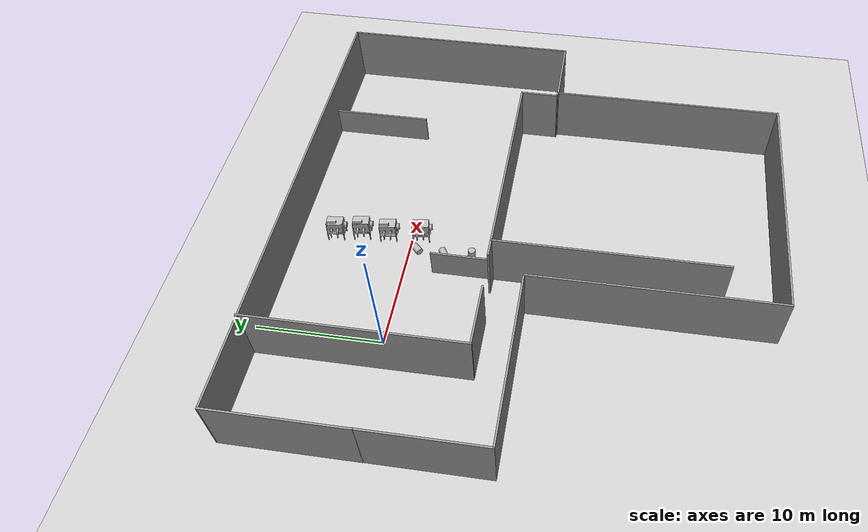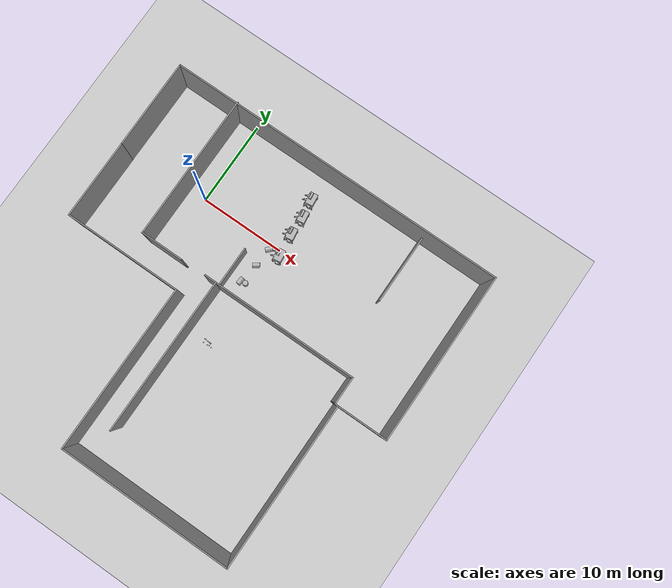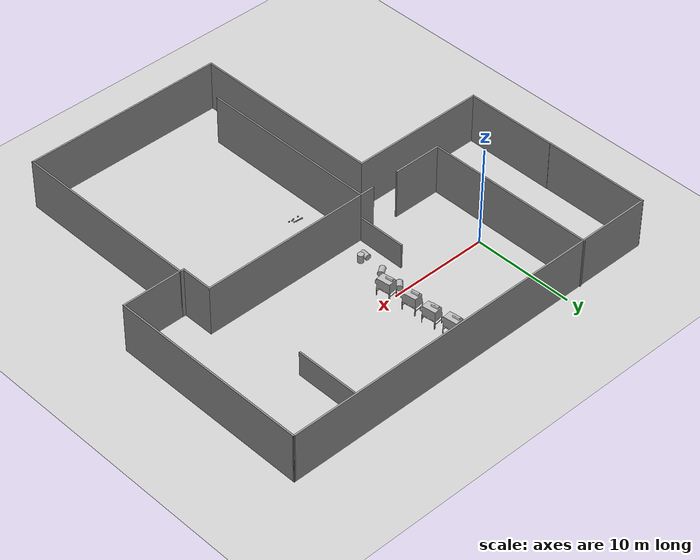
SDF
<sdf version="1.7">
 <world name="default">
  <model name="ground_plane">
   <static>1</static>
   <link name="link">
    <collision name="collision">
     <geometry><plane><normal>0 0 1</normal><size>100 100</size></plane></geometry>
     <surface><friction><ode><mu>100</mu><mu2>50</mu2></ode></friction></surface>
    </collision>
    <visual name="visual">
     <cast_shadows>0</cast_shadows>
     <geometry><plane><normal>0 0 1</normal><size>100 100</size></plane></geometry>
     <material>
      <script><uri>file://media/materials/scripts/gazebo.material</uri><name>Gazebo/Grey</name></script>
     </material>
    </visual>
   </link>
  </model>
  <model name="large_room_demo">
   <pose>10.4026 -9.94141 0 0 -0 0</pose>
   <link name="Wall_1">
    <collision name="Wall_1_Collision">
     <geometry><box><size>9.25 0.15 5</size></box></geometry>
     <pose>0 0 2.5 0 -0 0</pose>
    </collision>
    <visual name="Wall_1_Visual">
     <pose>0 0 2.5 0 -0 0</pose>
     <geometry><box><size>9.25 0.15 5</size></box></geometry>
     <material>
      <script><uri>file://media/materials/scripts/gazebo.material</uri><name>Gazebo/Grey</name></script>
      <ambient>1 1 1 1</ambient>
     </material>
     <meta><layer>0</layer></meta>
    </visual>
    <pose>-19.766 4.391 0 0 -0 -1.5708</pose>
   </link>
   <link name="Wall_11">
    <collision name="Wall_11_Collision">
     <geometry><box><size>17 0.15 5</size></box></geometry>
     <pose>0 0 2.5 0 -0 0</pose>
    </collision>
    <visual name="Wall_11_Visual">
     <pose>0 0 2.5 0 -0 0</pose>
     <geometry><box><size>17 0.15 5</size></box></geometry>
     <material>
      <script><uri>file://media/materials/scripts/gazebo.material</uri><name>Gazebo/Grey</name></script>
      <ambient>1 1 1 1</ambient>
     </material>
     <meta><layer>0</layer></meta>
    </visual>
    <pose>-12.466 11.084 0 0 -0 -1.5708</pose>
   </link>
   <link name="Wall_12">
    <collision name="Wall_12_Collision">
     <geometry><box><size>5 0.15 5</size></box></geometry>
     <pose>0 0 2.5 0 -0 0</pose>
    </collision>
    <visual name="Wall_12_Visual">
     <pose>0 0 2.5 0 -0 0</pose>
     <geometry><box><size>5 0.15 5</size></box></geometry>
     <material>
      <script><uri>file://media/materials/scripts/gazebo.material</uri><name>Gazebo/Grey</name></script>
      <ambient>1 1 1 1</ambient>
     </material>
     <meta><layer>0</layer></meta>
    </visual>
    <pose>-10.041 2.659 0 0 -0 0</pose>
   </link>
   <link name="Wall_15">
    <collision name="Wall_15_Collision">
     <geometry><box><size>1.5 0.15 5</size></box></geometry>
     <pose>0 0 2.5 0 -0 0</pose>
    </collision>
    <visual name="Wall_15_Visual">
     <pose>0 0 2.5 0 -0 0</pose>
     <geometry><box><size>1.5 0.15 5</size></box></geometry>
     <material>
      <script><uri>file://media/materials/scripts/gazebo.material</uri><name>Gazebo/Grey</name></script>
      <ambient>1 1 1 1</ambient>
     </material>
     <meta><layer>0</layer></meta>
    </visual>
    <pose>-3.97 2.751 0 0 -0 0</pose>
   </link>
   <link name="Wall_16">
    <collision name="Wall_16_Collision">
     <geometry><box><size>18.2497 0.15 5</size></box></geometry>
     <pose>0 0 2.5 0 -0 0</pose>
    </collision>
    <visual name="Wall_16_Visual">
     <pose>0 0 2.5 0 -0 0</pose>
     <geometry><box><size>18.2497 0.15 5</size></box></geometry>
     <material>
      <script><uri>file://media/materials/scripts/gazebo.material</uri><name>Gazebo/Grey</name></script>
      <ambient>1 1 1 1</ambient>
     </material>
     <meta><layer>0</layer></meta>
    </visual>
    <pose>-3.295 -6.299 0 0 -0 -1.5708</pose>
   </link>
   <link name="Wall_18">
    <collision name="Wall_18_Collision">
     <geometry><box><size>17 0.15 5</size></box></geometry>
     <pose>0 0 2.5 0 -0 0</pose>
    </collision>
    <visual name="Wall_18_Visual">
     <pose>0 0 2.5 0 -0 0</pose>
     <geometry><box><size>17 0.15 5</size></box></geometry>
     <material>
      <script><uri>file://media/materials/scripts/gazebo.material</uri><name>Gazebo/Grey</name></script>
      <ambient>1 1 1 1</ambient>
     </material>
     <meta><layer>0</layer></meta>
    </visual>
    <pose>5.13 2.751 0 0 -0 0</pose>
   </link>
   <link name="Wall_19">
    <collision name="Wall_19_Collision">
     <geometry><box><size>3.25 0.15 5</size></box></geometry>
     <pose>0 0 2.5 0 -0 0</pose>
    </collision>
    <visual name="Wall_19_Visual">
     <pose>0 0 2.5 0 -0 0</pose>
     <geometry><box><size>3.25 0.15 5</size></box></geometry>
     <material>
      <script><uri>file://media/materials/scripts/gazebo.material</uri><name>Gazebo/Grey</name></script>
      <ambient>1 1 1 1</ambient>
     </material>
     <meta><layer>0</layer></meta>
    </visual>
    <pose>13.555 1.201 0 0 -0 -1.5708</pose>
   </link>
   <link name="Wall_2">
    <collision name="Wall_2_Collision">
     <geometry><box><size>13.75 0.15 5</size></box></geometry>
     <pose>0 0 2.5 0 -0 0</pose>
    </collision>
    <visual name="Wall_2_Visual">
     <pose>0 0 2.5 0 -0 0</pose>
     <geometry><box><size>13.75 0.15 5</size></box></geometry>
     <material>
      <script><uri>file://media/materials/scripts/gazebo.material</uri><name>Gazebo/Grey</name></script>
      <ambient>1 1 1 1</ambient>
     </material>
     <meta><layer>0</layer></meta>
    </visual>
    <pose>-12.966 -0.159 0 0 -0 0</pose>
   </link>
   <link name="Wall_20">
    <collision name="Wall_20_Collision">
     <geometry><box><size>0.533873 0.15 5</size></box></geometry>
     <pose>0 0 2.5 0 -0 0</pose>
    </collision>
    <visual name="Wall_20_Visual">
     <pose>0 0 2.5 0 -0 0</pose>
     <geometry><box><size>0.533873 0.15 5</size></box></geometry>
     <material>
      <script><uri>file://media/materials/scripts/gazebo.material</uri><name>Gazebo/Grey</name></script>
      <ambient>1 1 1 1</ambient>
     </material>
     <meta><layer>0</layer></meta>
    </visual>
    <pose>13.7445 -0.379 0 0 -0 -0.157008</pose>
   </link>
   <link name="Wall_22">
    <collision name="Wall_22_Collision">
     <geometry><box><size>8.25 0.15 2.5</size></box></geometry>
     <pose>0 0 1.25 0 -0 0</pose>
    </collision>
    <visual name="Wall_22_Visual">
     <pose>0 0 1.25 0 -0 0</pose>
     <geometry><box><size>8.25 0.15 2.5</size></box></geometry>
     <material>
      <script><uri>file://media/materials/scripts/gazebo.material</uri><name>Gazebo/Grey</name></script>
      <ambient>1 1 1 1</ambient>
     </material>
     <meta><layer>0</layer></meta>
    </visual>
    <pose>11.5445 15.3019 0 0 -0 -1.5708</pose>
   </link>
   <link name="Wall_24">
    <collision name="Wall_24_Collision">
     <geometry><box><size>5 0.15 2.5</size></box></geometry>
     <pose>0 0 1.25 0 -0 0</pose>
    </collision>
    <visual name="Wall_24_Visual">
     <pose>0 0 1.25 0 -0 0</pose>
     <geometry><box><size>5 0.15 2.5</size></box></geometry>
     <material>
      <script><uri>file://media/materials/scripts/gazebo.material</uri><name>Gazebo/Grey</name></script>
      <ambient>1 1 1 1</ambient>
     </material>
     <meta><layer>0</layer></meta>
    </visual>
    <pose>-3.295 5.176 0 0 -0 1.5708</pose>
   </link>
   <link name="Wall_3">
    <collision name="Wall_3_Collision">
     <geometry><box><size>19.5 0.15 5</size></box></geometry>
     <pose>0 0 2.5 0 -0 0</pose>
    </collision>
    <visual name="Wall_3_Visual">
     <pose>0 0 2.5 0 -0 0</pose>
     <geometry><box><size>19.5 0.15 5</size></box></geometry>
     <material>
      <script><uri>file://media/materials/scripts/gazebo.material</uri><name>Gazebo/Grey</name></script>
      <ambient>1 1 1 1</ambient>
     </material>
     <meta><layer>0</layer></meta>
    </visual>
    <pose>-6.166 -9.834 0 0 -0 -1.5708</pose>
   </link>
   <link name="Wall_4">
    <collision name="Wall_4_Collision">
     <geometry><box><size>20.25 0.15 5</size></box></geometry>
     <pose>0 0 2.5 0 -0 0</pose>
    </collision>
    <visual name="Wall_4_Visual">
     <pose>0 0 2.5 0 -0 0</pose>
     <geometry><box><size>20.25 0.15 5</size></box></geometry>
     <material>
      <script><uri>file://media/materials/scripts/gazebo.material</uri><name>Gazebo/Grey</name></script>
      <ambient>1 1 1 1</ambient>
     </material>
     <meta><layer>0</layer></meta>
    </visual>
    <pose>3.884 -19.509 0 0 -0 0</pose>
   </link>
   <link name="Wall_5">
    <collision name="Wall_5_Collision">
     <geometry><box><size>19.25 0.15 5</size></box></geometry>
     <pose>0 0 2.5 0 -0 0</pose>
    </collision>
    <visual name="Wall_5_Visual">
     <pose>0 0 2.5 0 -0 0</pose>
     <geometry><box><size>19.25 0.15 5</size></box></geometry>
     <material>
      <script><uri>file://media/materials/scripts/gazebo.material</uri><name>Gazebo/Grey</name></script>
      <ambient>1 1 1 1</ambient>
     </material>
     <meta><layer>0</layer></meta>
    </visual>
    <pose>13.934 -9.959 0 0 -0 1.5708</pose>
   </link>
   <link name="Wall_6">
    <collision name="Wall_6_Collision">
     <geometry><box><size>6 0.15 5</size></box></geometry>
     <pose>0 0 2.5 0 -0 0</pose>
    </collision>
    <visual name="Wall_6_Visual">
     <pose>0 0 2.5 0 -0 0</pose>
     <geometry><box><size>6 0.15 5</size></box></geometry>
     <material>
      <script><uri>file://media/materials/scripts/gazebo.material</uri><name>Gazebo/Grey</name></script>
      <ambient>1 1 1 1</ambient>
     </material>
     <meta><layer>0</layer></meta>
    </visual>
    <pose>16.859 -0.409 0 0 -0 0</pose>
   </link>
   <link name="Wall_7">
    <collision name="Wall_7_Collision">
     <geometry><box><size>20 0.15 5</size></box></geometry>
     <pose>0 0 2.5 0 -0 0</pose>
    </collision>
    <visual name="Wall_7_Visual">
     <pose>0 0 2.5 0 -0 0</pose>
     <geometry><box><size>20 0.15 5</size></box></geometry>
     <material>
      <script><uri>file://media/materials/scripts/gazebo.material</uri><name>Gazebo/Grey</name></script>
      <ambient>1 1 1 1</ambient>
     </material>
     <meta><layer>0</layer></meta>
    </visual>
    <pose>19.784 9.516 0 0 -0 1.5708</pose>
   </link>
   <link name="Wall_8">
    <collision name="Wall_8_Collision">
     <geometry><box><size>39.718 0.15 5</size></box></geometry>
     <pose>0 0 2.5 0 -0 0</pose>
    </collision>
    <visual name="Wall_8_Visual">
     <pose>0 0 2.5 0 -0 0</pose>
     <geometry><box><size>39.718 0.15 5</size></box></geometry>
     <material>
      <script><uri>file://media/materials/scripts/gazebo.material</uri><name>Gazebo/Grey</name></script>
      <ambient>1 1 1 1</ambient>
     </material>
     <meta><layer>0</layer></meta>
    </visual>
    <pose>0 19.4235 0 0 -0 -3.14071</pose>
   </link>
   <link name="Wall_9">
    <collision name="Wall_9_Collision">
     <geometry><box><size>10.5 0.15 5</size></box></geometry>
     <pose>0 0 2.5 0 -0 0</pose>
    </collision>
    <visual name="Wall_9_Visual">
     <pose>0 0 2.5 0 -0 0</pose>
     <geometry><box><size>10.5 0.15 5</size></box></geometry>
     <material>
      <script><uri>file://media/materials/scripts/gazebo.material</uri><name>Gazebo/Grey</name></script>
      <ambient>1 1 1 1</ambient>
     </material>
     <meta><layer>0</layer></meta>
    </visual>
    <pose>-19.784 14.231 0 0 -0 -1.5708</pose>
   </link>
   <static>1</static>
  </model>
  <model name="toxic_barrel_clone_clone_0">
   <static>0</static>
   <link name="link">
    <visual name="visual">
     <geometry><mesh><uri>model://toxic_barrel/meshes/barrel_red.obj</uri></mesh></geometry>
    </visual>
    <collision name="collision">
     <geometry><mesh><uri>model://toxic_barrel/meshes/barrel_red.obj</uri></mesh></geometry>
    </collision>
    <inertial>
     <inertia><ixx>1</ixx><ixy>0</ixy><ixz>0</ixz><iyy>1</iyy><iyz>0</iyz><izz>1</izz></inertia>
     <mass>1</mass>
    </inertial>
   </link>
   <pose>8.98441 -0.609743 0.306198 -3.14159 -0.981738 2.37214</pose>
  </model>
  <model name="toxic_barrel_clone_clone_3">
   <static>0</static>
   <link name="link">
    <visual name="visual">
     <geometry><mesh><uri>model://toxic_barrel/meshes/barrel_red.obj</uri></mesh></geometry>
    </visual>
    <collision name="collision">
     <geometry><mesh><uri>model://toxic_barrel/meshes/barrel_red.obj</uri></mesh></geometry>
    </collision>
    <inertial>
     <inertia><ixx>1</ixx><ixy>0</ixy><ixz>0</ixz><iyy>1</iyy><iyz>0</iyz><izz>1</izz></inertia>
     <mass>1</mass>
    </inertial>
   </link>
   <pose>8.83956 -2.86271 0.306203 -8e-06 -0.981729 -0.994421</pose>
  </model>
  <model name="toxic_barrel_clone_clone_3_clone_clone_7_clone_0">
   <static>0</static>
   <link name="link">
    <visual name="visual">
     <geometry><mesh><uri>model://toxic_barrel/meshes/barrel_red.obj</uri></mesh></geometry>
    </visual>
    <collision name="collision">
     <geometry><mesh><uri>model://toxic_barrel/meshes/barrel_red.obj</uri></mesh></geometry>
    </collision>
    <inertial>
     <inertia><ixx>1</ixx><ixy>0</ixy><ixz>0</ixz><iyy>1</iyy><iyz>0</iyz><izz>1</izz></inertia>
     <mass>1</mass>
    </inertial>
   </link>
   <pose>9.05496 -5.16635 0.426402 -1.56826 0.003571 1.79292</pose>
  </model>
  <model name="toxic_barrel_clone_clone_3_clone_clone_7_clone_3_clone">
   <static>0</static>
   <link name="link">
    <visual name="visual">
     <geometry><mesh><uri>model://toxic_barrel/meshes/barrel_red.obj</uri></mesh></geometry>
    </visual>
    <collision name="collision">
     <geometry><mesh><uri>model://toxic_barrel/meshes/barrel_red.obj</uri></mesh></geometry>
    </collision>
    <inertial>
     <inertia><ixx>1</ixx><ixy>0</ixy><ixz>0</ixz><iyy>1</iyy><iyz>0</iyz><izz>1</izz></inertia>
     <mass>1</mass>
    </inertial>
   </link>
   <pose>8.44629 -5.25693 0.306206 -0 0.981737 3.05699</pose>
  </model>
  <model name="glovebox_clone_1_clone_3_clone">
   <static>0</static>
   <link name="link">
    <visual name="visual">
     <geometry><mesh><uri>model://glovebox/meshes/glovebox.obj</uri></mesh></geometry>
    </visual>
    <collision name="collision">
     <geometry><mesh><uri>model://glovebox/meshes/glovebox.obj</uri></mesh></geometry>
    </collision>
    <inertial>
     <inertia><ixx>1</ixx><ixy>0</ixy><ixz>0</ixz><iyy>1</iyy><iyz>0</iyz><izz>1</izz></inertia>
     <mass>1</mass>
    </inertial>
   </link>
   <pose>10.0468 4.22875 -0.000824 1.56974 -5e-06 -1.43636</pose>
  </model>
  <model name="glovebox_clone_1_clone_3_clone_0">
   <static>0</static>
   <link name="link">
    <visual name="visual">
     <geometry><mesh><uri>model://glovebox/meshes/glovebox.obj</uri></mesh></geometry>
    </visual>
    <collision name="collision">
     <geometry><mesh><uri>model://glovebox/meshes/glovebox.obj</uri></mesh></geometry>
    </collision>
    <inertial>
     <inertia><ixx>1</ixx><ixy>0</ixy><ixz>0</ixz><iyy>1</iyy><iyz>0</iyz><izz>1</izz></inertia>
     <mass>1</mass>
    </inertial>
   </link>
   <pose>10.095 1.99987 -0.000791 1.57079 -0.000768 -1.43694</pose>
  </model>
  <model name="glovebox_clone_1_clone_3_clone_1">
   <static>0</static>
   <link name="link">
    <visual name="visual">
     <geometry><mesh><uri>model://glovebox/meshes/glovebox.obj</uri></mesh></geometry>
    </visual>
    <collision name="collision">
     <geometry><mesh><uri>model://glovebox/meshes/glovebox.obj</uri></mesh></geometry>
    </collision>
    <inertial>
     <inertia><ixx>1</ixx><ixy>0</ixy><ixz>0</ixz><iyy>1</iyy><iyz>0</iyz><izz>1</izz></inertia>
     <mass>1</mass>
    </inertial>
   </link>
   <pose>10.3953 -0.695399 -0.000791 1.57079 -0.000768 -1.43697</pose>
  </model>
  <model name="glovebox_clone_1_clone_3">
   <static>0</static>
   <link name="link">
    <visual name="visual">
     <geometry><mesh><uri>model://glovebox/meshes/glovebox.obj</uri></mesh></geometry>
    </visual>
    <collision name="collision">
     <geometry><mesh><uri>model://glovebox/meshes/glovebox.obj</uri></mesh></geometry>
    </collision>
    <inertial>
     <inertia><ixx>1</ixx><ixy>0</ixy><ixz>0</ixz><iyy>1</iyy><iyz>0</iyz><izz>1</izz></inertia>
     <mass>1</mass>
    </inertial>
   </link>
   <pose>9.71778 6.34041 -0.001026 1.57256 -7.1e-05 -1.46807</pose>
  </model>
  <model name="depth_camera">
   <link name="link">
    <pose>0 0 0.05 0 -0 0</pose>
    <inertial>
     <mass>0.1</mass>
     <inertia>
      <ixx>0.000166667</ixx>
      <iyy>0.000166667</iyy>
      <izz>0.000166667</izz>
      <ixy>0</ixy>
      <ixz>0</ixz>
      <iyz>0</iyz>
     </inertia>
    </inertial>
    <collision name="collision"><geometry><box><size>0.1 0.1 0.1</size></box></geometry></collision>
    <visual name="visual"><geometry><box><size>0.1 0.1 0.1</size></box></geometry></visual>
    <sensor name="camera" type="depth">
     <camera>
      <horizontal_fov>1.047</horizontal_fov>
      <image><width>320</width><height>240</height></image>
      <clip><near>0.1</near><far>100</far></clip>
     </camera>
     <always_on>1</always_on>
     <update_rate>30</update_rate>
     <visualize>1</visualize>
    </sensor>
   </link>
   <pose>8.89972 -12.5883 0.0105 0 -0 -1.7e-05</pose>
  </model>
  <model name="depth_camera_clone">
   <link name="link">
    <pose>0 0 0.05 0 -0 0</pose>
    <inertial>
     <mass>0.1</mass>
     <inertia>
      <ixx>0.000166667</ixx>
      <iyy>0.000166667</iyy>
      <izz>0.000166667</izz>
      <ixy>0</ixy>
      <ixz>0</ixz>
      <iyz>0</iyz>
     </inertia>
    </inertial>
    <collision name="collision"><geometry><box><size>0.1 0.1 0.1</size></box></geometry></collision>
    <visual name="visual"><geometry><box><size>0.1 0.1 0.1</size></box></geometry></visual>
    <sensor name="camera" type="depth">
     <camera>
      <horizontal_fov>1.047</horizontal_fov>
      <image><width>320</width><height>240</height></image>
      <clip><near>0.1</near><far>100</far></clip>
     </camera>
     <always_on>1</always_on>
     <update_rate>30</update_rate>
     <visualize>1</visualize>
    </sensor>
   </link>
   <pose>9.0896 -12.5986 0.010495 -3.1e-05 6.3e-05 5.2e-05</pose>
  </model>
  <model name="depth_camera_clone_0">
   <link name="link">
    <pose>0 0 0.05 0 -0 0</pose>
    <inertial>
     <mass>0.1</mass>
     <inertia>
      <ixx>0.000166667</ixx>
      <iyy>0.000166667</iyy>
      <izz>0.000166667</izz>
      <ixy>0</ixy>
      <ixz>0</ixz>
      <iyz>0</iyz>
     </inertia>
    </inertial>
    <collision name="collision"><geometry><box><size>0.1 0.1 0.1</size></box></geometry></collision>
    <visual name="visual"><geometry><box><size>0.1 0.1 0.1</size></box></geometry></visual>
    <sensor name="camera" type="depth">
     <camera>
      <horizontal_fov>1.047</horizontal_fov>
      <image><width>320</width><height>240</height></image>
      <clip><near>0.1</near><far>100</far></clip>
     </camera>
     <always_on>1</always_on>
     <update_rate>30</update_rate>
     <visualize>1</visualize>
    </sensor>
   </link>
   <pose>9.29288 -12.6278 0.010495 -3.1e-05 6.3e-05 5.2e-05</pose>
  </model>
  <model name="depth_camera_clone_1">
   <link name="link">
    <pose>0 0 0.05 0 -0 0</pose>
    <inertial>
     <mass>0.1</mass>
     <inertia>
      <ixx>0.000166667</ixx>
      <iyy>0.000166667</iyy>
      <izz>0.000166667</izz>
      <ixy>0</ixy>
      <ixz>0</ixz>
      <iyz>0</iyz>
     </inertia>
    </inertial>
    <collision name="collision"><geometry><box><size>0.1 0.1 0.1</size></box></geometry></collision>
    <visual name="visual"><geometry><box><size>0.1 0.1 0.1</size></box></geometry></visual>
    <sensor name="camera" type="depth">
     <camera>
      <horizontal_fov>1.047</horizontal_fov>
      <image><width>320</width><height>240</height></image>
      <clip><near>0.1</near><far>100</far></clip>
     </camera>
     <always_on>1</always_on>
     <update_rate>30</update_rate>
     <visualize>1</visualize>
    </sensor>
   </link>
   <pose>9.506 -12.6372 0.010495 -3.1e-05 6.3e-05 5.2e-05</pose>
  </model>
  <model name="depth_camera_clone_2">
   <link name="link">
    <pose>0 0 0.05 0 -0 0</pose>
    <inertial>
     <mass>0.1</mass>
     <inertia>
      <ixx>0.000166667</ixx>
      <iyy>0.000166667</iyy>
      <izz>0.000166667</izz>
      <ixy>0</ixy>
      <ixz>0</ixz>
      <iyz>0</iyz>
     </inertia>
    </inertial>
    <collision name="collision"><geometry><box><size>0.1 0.1 0.1</size></box></geometry></collision>
    <visual name="visual"><geometry><box><size>0.1 0.1 0.1</size></box></geometry></visual>
    <sensor name="camera" type="depth">
     <camera>
      <horizontal_fov>1.047</horizontal_fov>
      <image><width>320</width><height>240</height></image>
      <clip><near>0.1</near><far>100</far></clip>
     </camera>
     <always_on>1</always_on>
     <update_rate>30</update_rate>
     <visualize>1</visualize>
    </sensor>
   </link>
   <pose>9.50601 -13 0.0105 0 -0 6.3e-05</pose>
  </model>
  <model name="depth_camera_clone_3">
   <link name="link">
    <pose>0 0 0.05 0 -0 0</pose>
    <inertial>
     <mass>0.1</mass>
     <inertia>
      <ixx>0.000166667</ixx>
      <iyy>0.000166667</iyy>
      <izz>0.000166667</izz>
      <ixy>0</ixy>
      <ixz>0</ixz>
      <iyz>0</iyz>
     </inertia>
    </inertial>
    <collision name="collision"><geometry><box><size>0.1 0.1 0.1</size></box></geometry></collision>
    <visual name="visual"><geometry><box><size>0.1 0.1 0.1</size></box></geometry></visual>
    <sensor name="camera" type="depth">
     <camera>
      <horizontal_fov>1.047</horizontal_fov>
      <image><width>320</width><height>240</height></image>
      <clip><near>0.1</near><far>100</far></clip>
     </camera>
     <always_on>1</always_on>
     <update_rate>30</update_rate>
     <visualize>1</visualize>
    </sensor>
   </link>
   <pose>9.71258 -12.6746 0.010495 -3.1e-05 6.3e-05 5.2e-05</pose>
  </model>
  <model name="depth_camera_clone_4">
   <link name="link">
    <pose>0 0 0.05 0 -0 0</pose>
    <inertial>
     <mass>0.1</mass>
     <inertia>
      <ixx>0.000166667</ixx>
      <iyy>0.000166667</iyy>
      <izz>0.000166667</izz>
      <ixy>0</ixy>
      <ixz>0</ixz>
      <iyz>0</iyz>
     </inertia>
    </inertial>
    <collision name="collision"><geometry><box><size>0.1 0.1 0.1</size></box></geometry></collision>
    <visual name="visual"><geometry><box><size>0.1 0.1 0.1</size></box></geometry></visual>
    <sensor name="camera" type="depth">
     <camera>
      <horizontal_fov>1.047</horizontal_fov>
      <image><width>320</width><height>240</height></image>
      <clip><near>0.1</near><far>100</far></clip>
     </camera>
     <always_on>1</always_on>
     <update_rate>30</update_rate>
     <visualize>1</visualize>
    </sensor>
   </link>
   <pose>9.99998 -13 0.010495 -3.1e-05 6.3e-05 5.2e-05</pose>
  </model>
  <model name="depth_camera_clone_5">
   <link name="link">
    <pose>0 0 0.05 0 -0 0</pose>
    <inertial>
     <mass>0.1</mass>
     <inertia>
      <ixx>0.000166667</ixx>
      <iyy>0.000166667</iyy>
      <izz>0.000166667</izz>
      <ixy>0</ixy>
      <ixz>0</ixz>
      <iyz>0</iyz>
     </inertia>
    </inertial>
    <collision name="collision"><geometry><box><size>0.1 0.1 0.1</size></box></geometry></collision>
    <visual name="visual"><geometry><box><size>0.1 0.1 0.1</size></box></geometry></visual>
    <sensor name="camera" type="depth">
     <camera>
      <horizontal_fov>1.047</horizontal_fov>
      <image><width>320</width><height>240</height></image>
      <clip><near>0.1</near><far>100</far></clip>
     </camera>
     <always_on>1</always_on>
     <update_rate>30</update_rate>
     <visualize>1</visualize>
    </sensor>
   </link>
   <pose>9.72545 -12.9332 0.010495 -3.1e-05 6.3e-05 5.2e-05</pose>
  </model>
  <model name="depth_camera_clone_6">
   <link name="link">
    <pose>0 0 0.05 0 -0 0</pose>
    <inertial>
     <mass>0.1</mass>
     <inertia>
      <ixx>0.000166667</ixx>
      <iyy>0.000166667</iyy>
      <izz>0.000166667</izz>
      <ixy>0</ixy>
      <ixz>0</ixz>
      <iyz>0</iyz>
     </inertia>
    </inertial>
    <collision name="collision"><geometry><box><size>0.1 0.1 0.1</size></box></geometry></collision>
    <visual name="visual"><geometry><box><size>0.1 0.1 0.1</size></box></geometry></visual>
    <sensor name="camera" type="depth">
     <camera>
      <horizontal_fov>1.047</horizontal_fov>
      <image><width>320</width><height>240</height></image>
      <clip><near>0.1</near><far>100</far></clip>
     </camera>
     <always_on>1</always_on>
     <update_rate>30</update_rate>
     <visualize>1</visualize>
    </sensor>
   </link>
   <pose>8.99999 -13 0.0105 0 -0 6.2e-05</pose>
  </model>
 </world>
</sdf>
